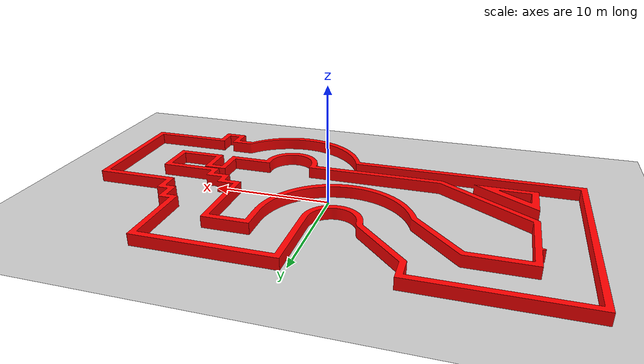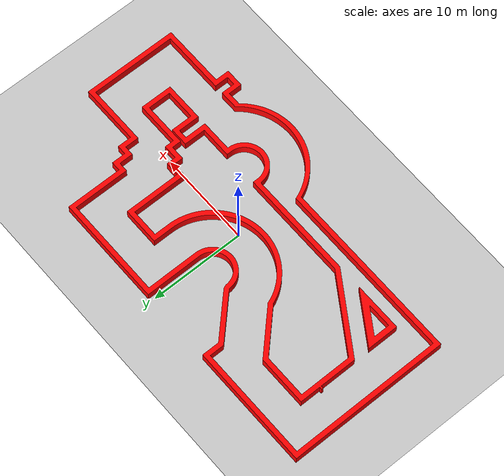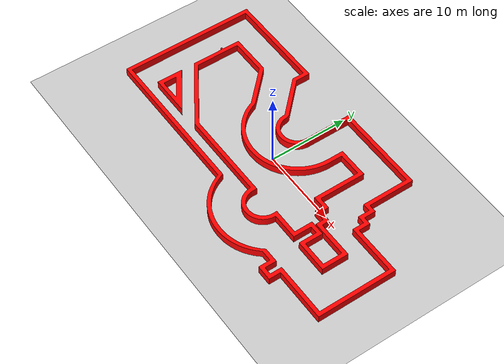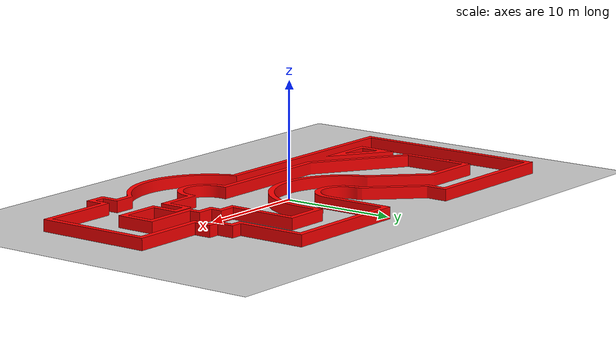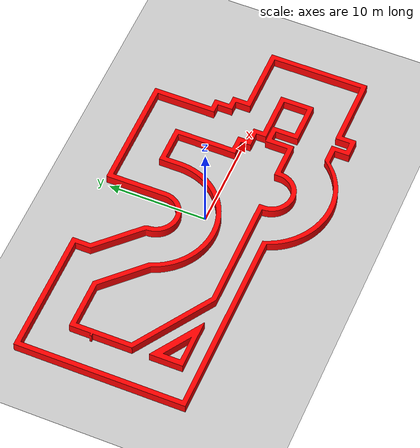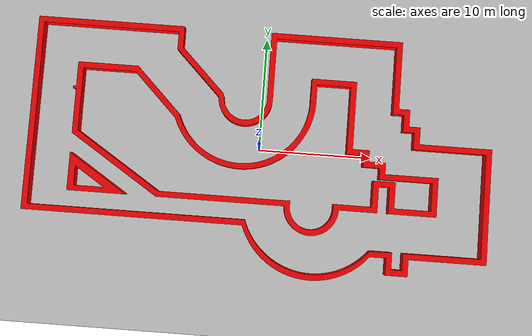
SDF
<sdf version='1.10'>
    <world name="empty_world">
    <physics name='1ms' type='ignored'>
      <max_step_size>0.001</max_step_size>
      <real_time_factor>1</real_time_factor>
      <real_time_update_rate>1000</real_time_update_rate>
    </physics>
    <plugin name='gz::sim::systems::Physics' filename='gz-sim-physics-system'/>
    <plugin name='gz::sim::systems::Sensors' filename='gz-sim-sensors-system'>
      <render_engine>ogre2</render_engine>
    </plugin>
    <plugin filename="gz-sim-imu-system"
        name="gz::sim::systems::Imu">
    </plugin>
    <plugin name='gz::sim::systems::SceneBroadcaster' filename='gz-sim-scene-broadcaster-system'/>
    <plugin name='gz::sim::systems::UserCommands' filename='gz-sim-user-commands-system'/>
    <gravity>0 0 -9.8000000000000007</gravity>
    <magnetic_field>5.5644999999999998e-06 2.2875799999999999e-05 -4.2388400000000002e-05</magnetic_field>
    <atmosphere type='adiabatic'/>
    <scene>
      <ambient>0.400000006 0.400000006 0.400000006 1</ambient>
      <background>0.699999988 0.699999988 0.699999988 1</background>
      <shadows>true</shadows>
    </scene>

    <model name='ground_plane'>
      <static>true</static>
      <link name='link'>
        <collision name='collision'>
          <geometry>
            <plane>
              <normal>0 0 1</normal>
              <size>100 100</size>
            </plane>
          </geometry>
          <surface>
            <friction>
              <ode/>
            </friction>
            <bounce/>
            <contact/>
          </surface>
        </collision>
        <visual name='visual'>
          <geometry>
            <plane>
              <normal>0 0 1</normal>
              <size>100 100</size>
            </plane>
          </geometry>
          <material>
            <ambient>0.800000012 0.800000012 0.800000012 1</ambient>
            <diffuse>0.800000012 0.800000012 0.800000012 1</diffuse>
            <specular>0.800000012 0.800000012 0.800000012 1</specular>
          </material>
        </visual>
        <pose>0 0 0 0 0 0</pose>
        <inertial>
          <pose>0 0 0 0 0 0</pose>
          <mass>1</mass>
          <inertia>
            <ixx>1</ixx>
            <ixy>0</ixy>
            <ixz>0</ixz>
            <iyy>1</iyy>
            <iyz>0</iyz>
            <izz>1</izz>
          </inertia>
        </inertial>
        <enable_wind>false</enable_wind>
      </link>
      <pose>0 0 0 0 0 0</pose>
      <self_collide>false</self_collide>
    </model>

    <model name='stl_maze'>
      <pose>0 0 0 0 0 0</pose>
      <static>true</static>
      <link name='link'>
        <collision name='maze_collision'>
          <geometry>
            <mesh>
              <uri>file:///home/lenovo/mrad_ws_2602_hotel/src/hotel_gazebo/worlds/RaceTrack.stl</uri>
              <scale>10 10 10</scale>
            </mesh>
          </geometry>
          <surface>
            <friction>
              <ode/>
            </friction>
            <bounce/>
            <contact/>
          </surface>
        </collision>
        <visual name='visual'>
          <geometry>
            <mesh>
              <uri>file:///home/lenovo/mrad_ws_2602_hotel/src/hotel_gazebo/worlds/RaceTrack.stl</uri>
              <scale>10 10 10</scale>
            </mesh>
          </geometry>
          <material>
            <ambient>1 0 0 1</ambient>
            <diffuse>1 0 0 1</diffuse>
            <specular>1 0 0 1</specular>
          </material>
        </visual>
        <pose>0 0 0 0 0 0</pose>
        <inertial>
          <pose>0 0 0 0 0 0</pose>
          <mass>1</mass>
          <inertia>
            <ixx>1</ixx>
            <ixy>0</ixy>
            <ixz>0</ixz>
            <iyy>1</iyy>
            <iyz>0</iyz>
            <izz>1</izz>
          </inertia>
        </inertial>
        <enable_wind>false</enable_wind>
      </link>
      <self_collide>false</self_collide>
    </model>

    <light name='sun' type='directional'>
      <pose>0 0 0 0 0 0</pose>
      <cast_shadows>true</cast_shadows>
      <intensity>1</intensity>
      <direction>-0.5 0.10000000000000001 -0.90000000000000002</direction>
      <diffuse>0.800000012 0.800000012 0.800000012 1</diffuse>
      <specular>0.200000003 0.200000003 0.200000003 1</specular>
      <attenuation>
        <range>1000</range>
        <linear>0.0099999997764825821</linear>
        <constant>0.89999997615814209</constant>
        <quadratic>0.0010000000474974513</quadratic>
      </attenuation>
      <spot>
        <inner_angle>0</inner_angle>
        <outer_angle>0</outer_angle>
        <falloff>0</falloff>
      </spot>
    </light>

  </world>
</sdf>
